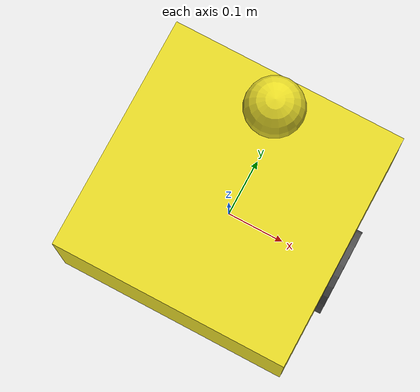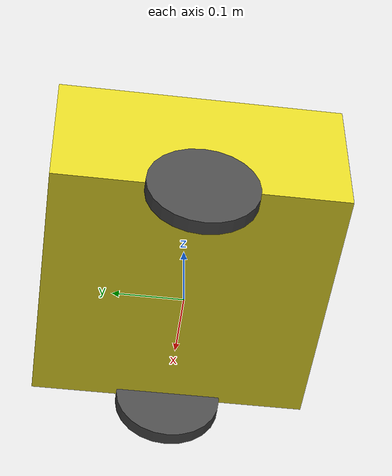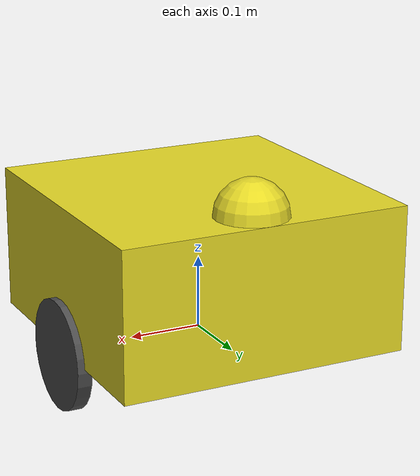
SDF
<sdf version='1.7'>
  <model name='robot'>
    <link name='base_link'>
      <inertial>
        <pose>0 0 0 0 -0 0</pose>
        <mass>10</mass>
        <inertia>
          <ixx>1</ixx>
          <ixy>0</ixy>
          <ixz>0</ixz>
          <iyy>1</iyy>
          <iyz>0</iyz>
          <izz>1</izz>
        </inertia>
      </inertial>
      <collision name='base_link_fixed_joint_lump__caster_backward_collision'>
        <pose>0 -0.17 -0.051 0 -0 0</pose>
        <geometry>
          <sphere>
            <radius>0.03</radius>
          </sphere>
        </geometry>
        <surface>
          <contact>
            <ode/>
          </contact>
          <friction>
            <ode>
              <mu>0</mu>
              <mu2>0</mu2>
            </ode>
          </friction>
        </surface>
      </collision>
      <collision name='base_link_fixed_joint_lump__caster_forward_collision_1'>
        <pose>0 0.17 -0.051 0 -0 0</pose>
        <geometry>
          <sphere>
            <radius>0.03</radius>
          </sphere>
        </geometry>
        <surface>
          <contact>
            <ode/>
          </contact>
          <friction>
            <ode>
              <mu>0</mu>
              <mu2>0</mu2>
            </ode>
          </friction>
        </surface>
      </collision>
    </link>
    <joint name='joint_body_top' type='prismatic'>
      <pose relative_to='base_link'>0 0 0.1 0 -0 0</pose>
      <parent>base_link</parent>
      <child>body_top</child>
      <axis>
        <xyz>0 0 1</xyz>
        <limit>
          <lower>0.1</lower>
          <upper>0.3</upper>
          <effort>1</effort>
          <velocity>0.1</velocity>
        </limit>
        <dynamics>
          <spring_reference>0</spring_reference>
          <spring_stiffness>0</spring_stiffness>
        </dynamics>
      </axis>
    </joint>
    <link name='body_top'>
      <pose relative_to='joint_body_top'>0 0 0 0 -0 0</pose>
      <inertial>
        <pose>0 0 0 0 -0 0</pose>
        <mass>0.1</mass>
        <inertia>
          <ixx>0.02</ixx>
          <ixy>0</ixy>
          <ixz>0</ixz>
          <iyy>0.02</iyy>
          <iyz>0</iyz>
          <izz>0.02</izz>
        </inertia>
      </inertial>
      <collision name='body_top_collision'>
        <pose>0 0 0 0 -0 0</pose>
        <geometry>
          <box>
            <size>0.4 0.4 0.2</size>
          </box>
        </geometry>
        <surface>
          <contact>
            <ode/>
          </contact>
          <friction>
            <ode/>
          </friction>
        </surface>
      </collision>
      <collision name='body_top_semantic_collision_1'>
        <pose>0 0.15 0.1 0 -0 0</pose>
        <geometry>
          <sphere>
            <radius>0.05</radius>
          </sphere>
        </geometry>
        <surface>
          <contact>
            <ode/>
          </contact>
          <friction>
            <ode/>
          </friction>
        </surface>
      </collision>
      <visual name='body_top_visual'>
        <pose>0 0 0 0 -0 0</pose>
        <geometry>
          <box>
            <size>0.4 0.4 0.2</size>
          </box>
        </geometry>
        <material>
          <script>
            <name>Gazebo/DarkYellow</name>
            <uri>file://media/materials/scripts/gazebo.material</uri>
          </script>
        </material>
      </visual>
      <visual name='body_top_semantic_visual_1'>
        <pose>0 0.15 0.1 0 -0 0</pose>
        <geometry>
          <sphere>
            <radius>0.05</radius>
          </sphere>
        </geometry>
        <material>
          <script>
            <name>Gazebo/DarkYellow</name>
            <uri>file://media/materials/scripts/gazebo.material</uri>
          </script>
        </material>
      </visual>
      <sensor name='head_ydlidar_sensor' type='gpu_ray'>
        <visualize>1</visualize>
        <update_rate>50</update_rate>
        <ray>
          <scan>
            <horizontal>
              <samples>700</samples>
              <resolution>1</resolution>
              <min_angle>-3.14159</min_angle>
              <max_angle>3.14159</max_angle>
            </horizontal>
          </scan>
          <range>
            <min>0.12</min>
            <max>8</max>
            <resolution>0.72</resolution>
          </range>
          <noise>
            <type>gaussian</type>
            <mean>0</mean>
            <stddev>0.01</stddev>
          </noise>
        </ray>
        <plugin name='gazebo_ros_head_ydlidar_controller' filename='libgazebo_ros_gpu_laser.so'>
          <robotNamespace>/robot</robotNamespace>
          <topicName>scan</topicName>
          <frameName>body_top_semantic</frameName>
        </plugin>
        <pose>0 0.15 0.1 0 -0 0</pose>
      </sensor>
    </link>
    <joint name='joint_wheel_left' type='revolute'>
      <pose relative_to='base_link'>-0.2 0 -0.005 0 -1.5708 0</pose>
      <parent>base_link</parent>
      <child>wheel_left</child>
      <axis>
        <xyz>0 0 1</xyz>
        <limit>
          <lower>-1e+16</lower>
          <upper>1e+16</upper>
        </limit>
        <dynamics>
          <spring_reference>0</spring_reference>
          <spring_stiffness>0</spring_stiffness>
        </dynamics>
      </axis>
    </joint>
    <link name='wheel_left'>
      <pose relative_to='joint_wheel_left'>0 0 0 0 -0 0</pose>
      <inertial>
        <pose>0 0 0 0 -0 0</pose>
        <mass>1</mass>
        <inertia>
          <ixx>0.01</ixx>
          <ixy>0</ixy>
          <ixz>0</ixz>
          <iyy>0.01</iyy>
          <iyz>0</iyz>
          <izz>0.01</izz>
        </inertia>
      </inertial>
      <collision name='wheel_left_collision'>
        <pose>0 0 0 0 -0 0</pose>
        <geometry>
          <cylinder>
            <length>0.02</length>
            <radius>0.076</radius>
          </cylinder>
        </geometry>
        <surface>
          <contact>
            <ode/>
          </contact>
          <friction>
            <ode/>
          </friction>
        </surface>
      </collision>
      <visual name='wheel_left_visual'>
        <pose>0 0 0 0 -0 0</pose>
        <geometry>
          <cylinder>
            <length>0.02</length>
            <radius>0.076</radius>
          </cylinder>
        </geometry>
        <material>
          <script>
            <name>Gazebo/DarkGrey</name>
            <uri>file://media/materials/scripts/gazebo.material</uri>
          </script>
        </material>
      </visual>
    </link>
    <joint name='joint_wheel_right' type='revolute'>
      <pose relative_to='base_link'>0.2 0 -0.005 0 -1.5708 0</pose>
      <parent>base_link</parent>
      <child>wheel_right</child>
      <axis>
        <xyz>0 0 1</xyz>
        <limit>
          <lower>-1e+16</lower>
          <upper>1e+16</upper>
        </limit>
        <dynamics>
          <spring_reference>0</spring_reference>
          <spring_stiffness>0</spring_stiffness>
        </dynamics>
      </axis>
    </joint>
    <link name='wheel_right'>
      <pose relative_to='joint_wheel_right'>0 0 0 0 -0 0</pose>
      <inertial>
        <pose>0 0 0 0 -0 0</pose>
        <mass>1</mass>
        <inertia>
          <ixx>0.01</ixx>
          <ixy>0</ixy>
          <ixz>0</ixz>
          <iyy>0.01</iyy>
          <iyz>0</iyz>
          <izz>0.01</izz>
        </inertia>
      </inertial>
      <collision name='wheel_right_collision'>
        <pose>0 0 0 0 -0 0</pose>
        <geometry>
          <cylinder>
            <length>0.02</length>
            <radius>0.076</radius>
          </cylinder>
        </geometry>
        <surface>
          <contact>
            <ode/>
          </contact>
          <friction>
            <ode/>
          </friction>
        </surface>
      </collision>
      <visual name='wheel_right_visual'>
        <pose>0 0 0 0 -0 0</pose>
        <geometry>
          <cylinder>
            <length>0.02</length>
            <radius>0.076</radius>
          </cylinder>
        </geometry>
        <material>
          <script>
            <name>Gazebo/DarkGrey</name>
            <uri>file://media/materials/scripts/gazebo.material</uri>
          </script>
        </material>
      </visual>
    </link>
    <plugin name='gazebo_ros_control' filename='libgazebo_ros_control.so'>
      <robotNamespace>/robot</robotNamespace>
    </plugin>
    <frame name='caster_backward_joint' attached_to='base_link'>
      <pose>0 -0.17 -0.051 0 -0 0</pose>
    </frame>
    <frame name='caster_backward' attached_to='caster_backward_joint'/>
    <frame name='caster_forward_joint' attached_to='base_link'>
      <pose>0 0.17 -0.051 0 -0 0</pose>
    </frame>
    <frame name='caster_forward' attached_to='caster_forward_joint'/>
    <frame name='joint_body_top_semantic' attached_to='body_top'>
      <pose>0 0.15 0.1 0 -0 0</pose>
    </frame>
    <frame name='body_top_semantic' attached_to='joint_body_top_semantic'/>
  </model>
</sdf>
